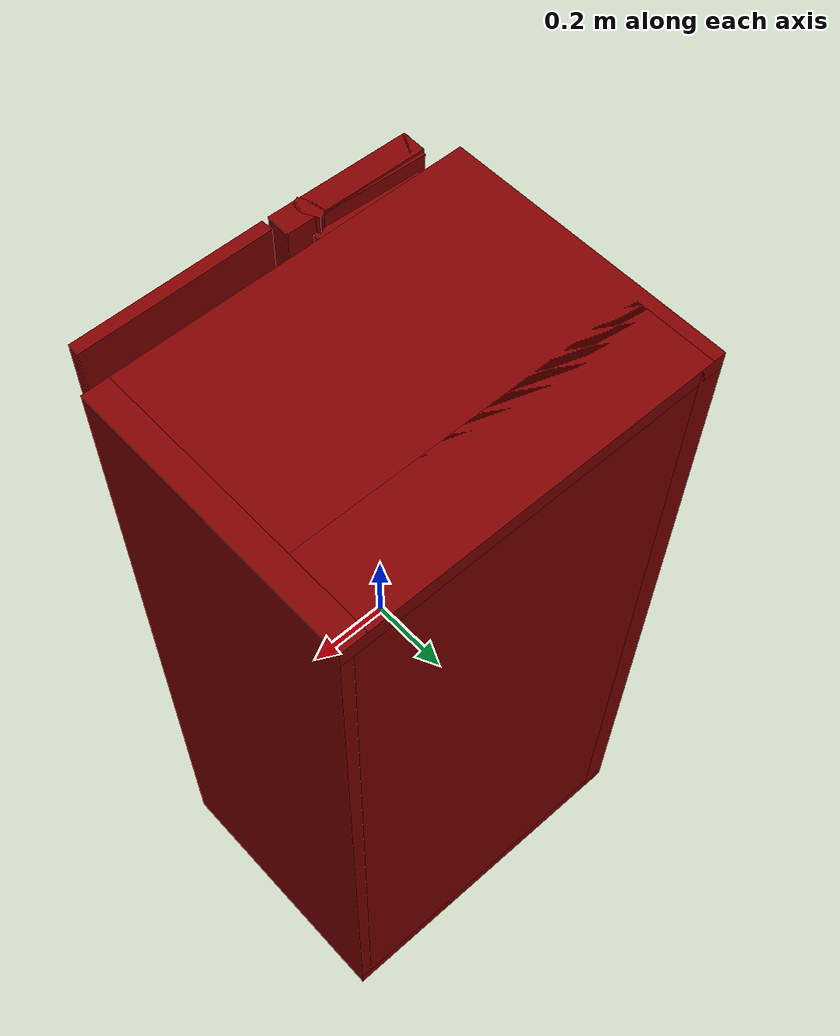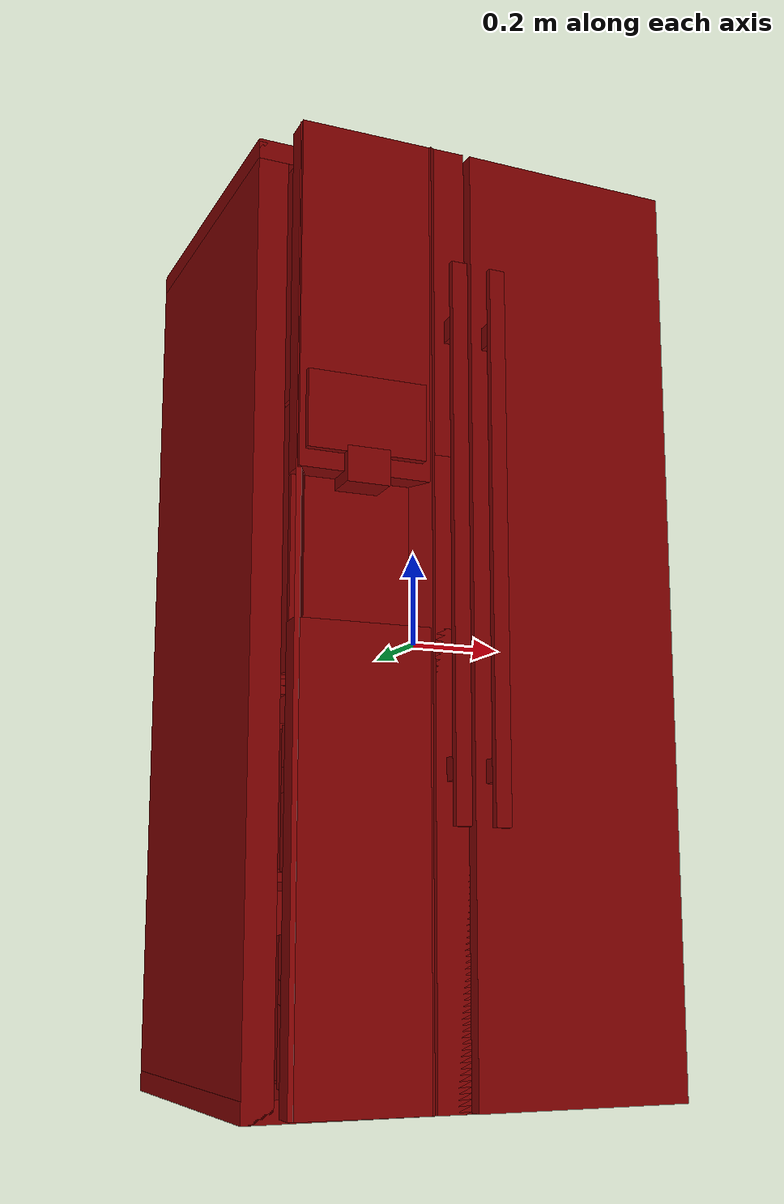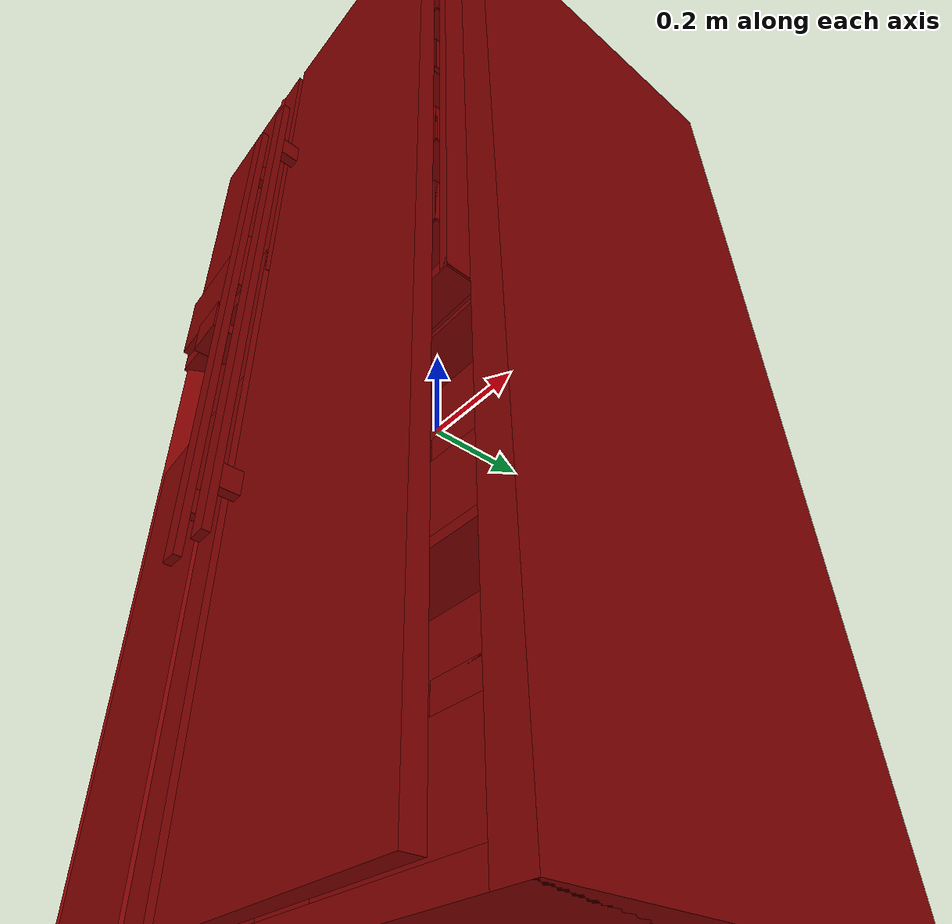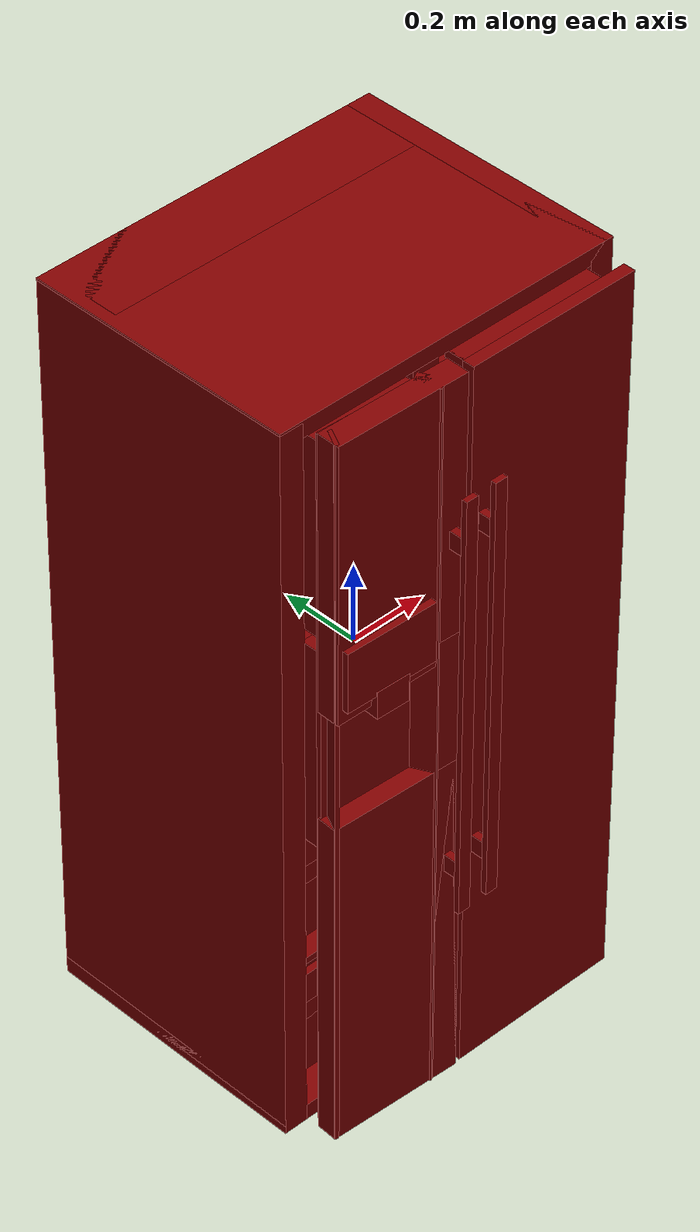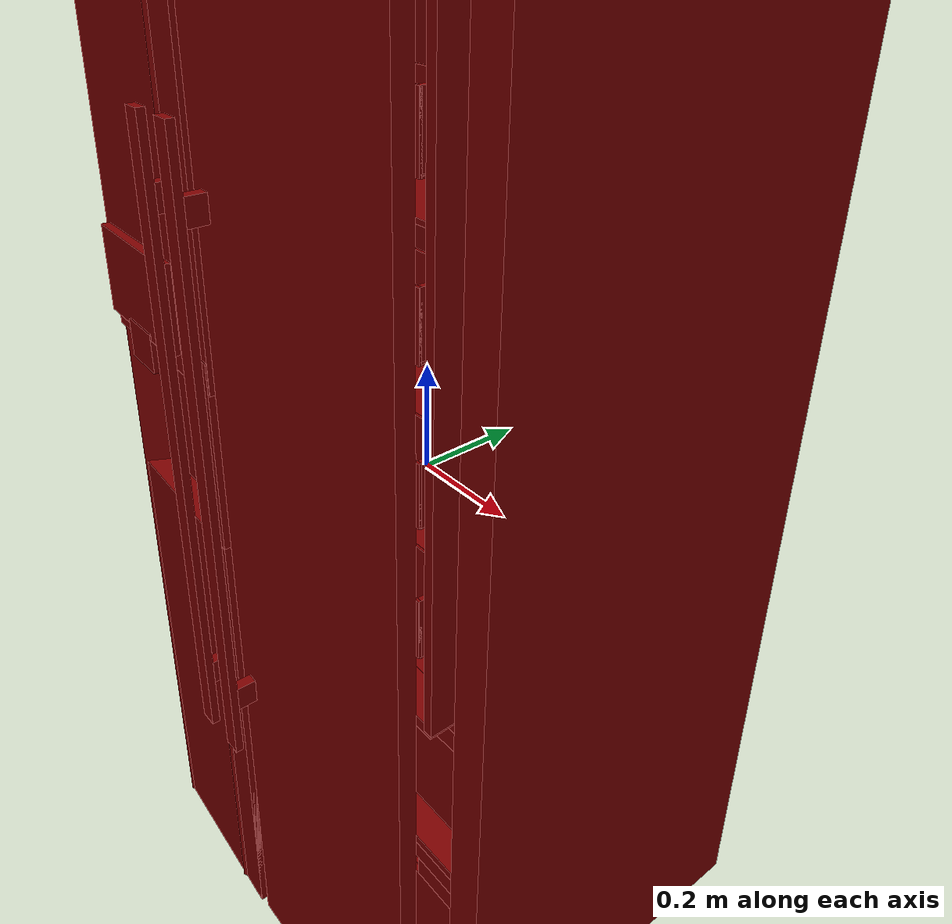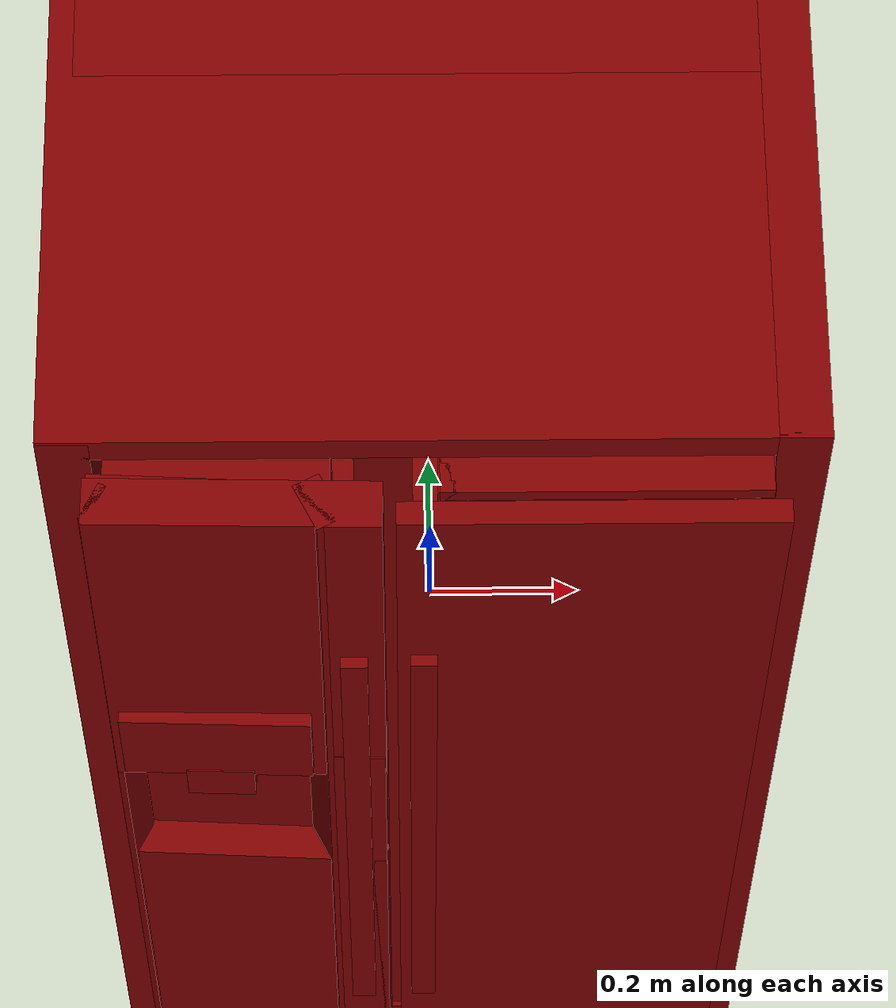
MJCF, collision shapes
<?xml version='1.0' encoding='UTF-8'?>
<mujoco model="model">
  <option timestep="0.002" gravity="0.0 0.0 -9.81"/>
  <compiler angle="radian"/>
  <asset>
    <mesh file="visuals/freezer_door.obj" name="freezer_door_vis"/>
    <mesh file="visuals/freezer_drawer0.obj" name="freezer_drawer0_vis"/>
    <mesh file="visuals/freezer_drawer1.obj" name="freezer_drawer1_vis"/>
    <mesh file="visuals/fridge_door.obj" name="fridge_door_vis"/>
    <mesh file="visuals/fridge_door_Clear.obj" name="fridge_door_Clear_vis"/>
    <mesh file="visuals/fridge_drawer0.obj" name="fridge_drawer0_vis"/>
    <mesh file="visuals/fridge_drawer1.obj" name="fridge_drawer1_vis"/>
    <mesh file="visuals/Body001.obj" name="Body001_vis"/>
    <mesh file="visuals/Body001_Clear.obj" name="Body001_Clear_vis"/>
    <texture file="visuals/T_BC001.png" name="Body001_material" type="2d"/>
    <material name="Body001_material" rgba="1 1 1 1.0" texture="Body001_material" shininess="0.141486167907715" specular="1"/>
    <texture file="visuals/T_BC001.png" name="freezer_door_material" type="2d"/>
    <material name="freezer_door_material" rgba="1 1 1 1.0" texture="freezer_door_material" shininess="0.141486167907715" specular="1"/>
    <texture file="visuals/T_BC001.png" name="freezer_drawer0_material" type="2d"/>
    <material name="freezer_drawer0_material" rgba="1 1 1 1.0" texture="freezer_drawer0_material" shininess="0.6141486167907715" specular="0.3103448502657381"/>
    <texture file="visuals/T_BC001.png" name="freezer_drawer1_material" type="2d"/>
    <material name="freezer_drawer1_material" rgba="1 1 1 1.0" texture="freezer_drawer1_material" shininess="0.6141486167907715" specular="0.3103448502657381"/>
    <texture file="visuals/T_BC001.png" name="fridge_door_material" type="2d"/>
    <material name="fridge_door_material" rgba="1 1 1 1.0" texture="fridge_door_material" shininess="0.141486167907715" specular="1"/>
    <texture file="visuals/T_BC001.png" name="fridge_door_Clear_material" type="2d"/>
    <material name="fridge_door_Clear_material" rgba="1 1 1 0.699999988079071" texture="fridge_door_Clear_material" shininess="0.141421377658844" specular="0.3103448502657381"/>
    <texture file="visuals/T_BC001.png" name="fridge_drawer0_material" type="2d"/>
    <material name="fridge_drawer0_material" rgba="1 1 1 0.699999988079071" texture="fridge_drawer0_material" shininess="0.141421377658844" specular="0.3103448502657381"/>
    <texture file="visuals/T_BC001.png" name="fridge_drawer1_material" type="2d"/>
    <material name="fridge_drawer1_material" rgba="1 1 1 0.699999988079071" texture="fridge_drawer1_material" shininess="0.141421377658844" specular="0.3103448502657381"/>
    <texture file="visuals/T_BC001.png" name="Body001_Clear_material" type="2d"/>
    <material name="Body001_Clear_material" rgba="1 1 1 0.699999988079071" texture="Body001_Clear_material" shininess="0.141421377658844" specular="0.3103448502657381"/>
  </asset>
  <default>
    <default class="visual">
      <geom conaffinity="0" contype="0" group="1" type="mesh"/>
    </default>
    <default class="collision">
      <geom group="0" rgba="0.5 0 0 0.5"/>
    </default>
    <default class="spawn">
      <geom group="0" rgba="1 1 1 0.5" contype="0" conaffinity="0"/>
      <site group="0" rgba="1 1 1 0.5"/>
    </default>
    <default class="region">
      <geom group="1" conaffinity="0" contype="0" rgba="0 1 0 0"/>
    </default>
  </default>
  <worldbody>
    <body>
      <body name="object">
        <geom mesh="Body001_vis" type="mesh" solimp="0.998 0.998 0.001" solref="0.001 1" friction="0.95 0.3 0.1" class="visual" material="Body001_material"/>
        <geom class="collision" type="box" pos="0.42698514 0.08066897 0.00000005" size="0.031174317002296448 0.3472144603729248 0.9458772540092468" quat="1.0 0.0 0.0 0.0"/>
        <geom class="collision" type="box" pos="0.00000001 0.08080845 0.92501152" size="0.45815926790237427 0.34735387563705444 0.020865734666585922" quat="1.0 0.0 0.0 0.0"/>
        <geom class="collision" type="box" pos="0.00021509 0.32882654 -0.00000006" size="0.42810675501823425 0.09933542460203171 0.9458773732185364" quat="1.0 0.0 0.0 0.0"/>
        <geom class="collision" type="box" pos="-0.05885063 -0.00889797 0.00005195" size="0.03430929034948349 0.24979962408542633 0.904093861579895" quat="1.0 0.0 0.0 0.0"/>
        <geom class="collision" type="box" pos="-0.38924086 -0.00037825 -0.16249698" size="0.014247119426727295 0.24221399426460266 0.008260749280452728" quat="1.0 0.0 0.0 0.0"/>
        <geom class="collision" type="box" pos="-0.42725158 0.08080837 -0.00283943" size="0.030907582491636276 0.34735387563705444 0.9430378675460815" quat="1.0 0.0 0.0 0.0"/>
        <geom class="collision" type="box" pos="0.00012399 -0.00500056 -0.51172590" size="0.4170524477958679 0.23744818568229675 0.008542299270629883" quat="1.0 0.0 0.0 0.0"/>
        <geom class="collision" type="box" pos="-0.10091834 -0.00037825 -0.16249698" size="0.016719326376914978 0.24221399426460266 0.008260749280452728" quat="1.0 0.0 0.0 0.0"/>
        <geom class="collision" type="box" pos="-0.01441544 -0.00037825 -0.16249698" size="0.016719326376914978 0.24221399426460266 0.008260749280452728" quat="1.0 0.0 0.0 0.0"/>
        <geom class="collision" type="box" pos="0.38873923 -0.00037825 -0.16249698" size="0.016719326376914978 0.24221399426460266 0.008260749280452728" quat="1.0 0.0 0.0 0.0"/>
        <geom class="collision" type="box" pos="0.38698617 0.02549064 0.19387200" size="0.01128388661891222 0.21634510159492493 0.008260749280452728" quat="1.0 0.0 0.0 0.0"/>
        <geom class="collision" type="box" pos="-0.01441544 0.01845139 0.19387200" size="0.016719326376914978 0.22338435053825378 0.008260749280452728" quat="1.0 0.0 0.0 0.0"/>
        <geom class="collision" type="box" pos="-0.10091834 0.01845139 0.19387200" size="0.016719326376914978 0.22338435053825378 0.008260749280452728" quat="1.0 0.0 0.0 0.0"/>
        <geom class="collision" type="box" pos="-0.38924086 0.01845139 0.19387200" size="0.014247119426727295 0.22338435053825378 0.008260749280452728" quat="1.0 0.0 0.0 0.0"/>
        <geom class="collision" type="box" pos="-0.38924086 0.01506027 0.54034185" size="0.014247119426727295 0.22677546739578247 0.008260749280452728" quat="1.0 0.0 0.0 0.0"/>
        <geom class="collision" type="box" pos="-0.10091834 0.01506022 0.54034185" size="0.016719326376914978 0.22677552700042725 0.008260749280452728" quat="1.0 0.0 0.0 0.0"/>
        <geom class="collision" type="box" pos="-0.01441544 0.01506025 0.54034185" size="0.016719326376914978 0.22677549719810486 0.008260749280452728" quat="1.0 0.0 0.0 0.0"/>
        <geom class="collision" type="box" pos="0.38557416 0.01506019 0.54034185" size="0.010424098931252956 0.22677555680274963 0.008260749280452728" quat="1.0 0.0 0.0 0.0"/>
        <geom class="collision" type="box" pos="0.00000001 0.08080845 -0.92495960" size="0.45815926790237427 0.34735387563705444 0.020917614921927452" quat="1.0 0.0 0.0 0.0"/>
        <geom class="collision" type="box" pos="-0.21467027 -0.00734162 -0.14780229" size="0.19012895226478577 0.2397892326116562 0.006109719164669514" quat="1.0 0.0 0.0 0.0"/>
        <geom class="collision" type="box" pos="-0.21467030 0.01845565 0.20975785" size="0.19012895226478577 0.21399196982383728 0.006064644083380699" quat="1.0 0.0 0.0 0.0"/>
        <geom class="collision" type="box" pos="-0.21517804 0.01845564 0.55493498" size="0.1883099377155304 0.21399198472499847 0.005926718935370445" quat="1.0 0.0 0.0 0.0"/>
        <geom class="collision" type="box" pos="0.16200835 -0.00734162 -0.14759985" size="0.255168080329895 0.2397892326116562 0.004432696849107742" quat="1.0 0.0 0.0 0.0"/>
        <geom class="collision" type="box" pos="0.16200833 0.01845565 0.20889238" size="0.255168080329895 0.21399196982383728 0.00443270243704319" quat="1.0 0.0 0.0 0.0"/>
        <geom class="collision" type="box" pos="0.16150059 0.01845564 0.55527371" size="0.25334906578063965 0.21399198472499847 0.004432702902704477" quat="1.0 0.0 0.0 0.0"/>
        <body name="freezer_door">
          <joint axis="0.0 0.0 -1.0" pos="-0.41386953 -0.35010860 0.00172258" limited="true" name="freezer_door_joint" range="0.0 1.5707963267948966" type="hinge" damping="1" frictionloss="1" armature=".01" stiffness="0.05"/>
          <geom mesh="freezer_door_vis" type="mesh" solimp="0.998 0.998 0.001" solref="0.001 1" friction="0.95 0.3 0.1" class="visual" material="freezer_door_material"/>
          <geom class="collision" type="box" pos="-0.37522584 -0.22543121 -0.04279220" size="0.005302963778376579 0.03438347578048706 0.045121245086193085" quat="1.0 0.0 0.0 0.0"/>
          <geom class="collision" type="box" pos="-0.26483190 -0.19807667 -0.04080178" size="0.10756411403417587 0.002234865678474307 0.03930643945932388" quat="1.0 0.0 0.0 0.0"/>
          <geom class="collision" type="box" pos="-0.15266697 -0.22482333 -0.04247972" size="0.006141011603176594 0.03377559408545494 0.045045383274555206" quat="1.0 0.0 0.0 0.0"/>
          <geom class="collision" type="box" pos="-0.25909418 -0.22559907 -0.08286168" size="0.1115652471780777 0.033953163772821426 0.004646170884370804" quat="1.0 0.0 0.0 0.0"/>
          <geom class="collision" type="box" pos="-0.23082300 -0.34350312 0.59181035" size="0.17186114192008972 0.029590152204036713 0.3520924150943756" quat="0.9999542236328125 0.0 -0.0 -0.00956775899976492"/>
          <geom class="collision" type="box" pos="-0.38943523 -0.34112275 0.00611198" size="0.005014027468860149 0.024861134588718414 0.9377908110618591" quat="0.972369909286499 0.0 -0.0 -0.2334454208612442"/>
          <geom class="collision" type="box" pos="-0.26915872 -0.35612572 0.25117961" size="0.04307648912072182 0.03443373367190361 0.03533017635345459" quat="0.9998664259910583 0.0 -0.0 -0.016344254836440086"/>
          <geom class="collision" type="box" pos="-0.27079976 -0.35453693 0.35156155" size="0.11950033903121948 0.033889371901750565 0.07683902978897095" quat="0.9998664259910583 0.0 -0.0 -0.016344254836440086"/>
          <geom class="collision" type="box" pos="-0.25136417 -0.27029238 0.65660053" size="0.13150446116924286 0.050830140709877014 0.24646736681461334" quat="1.0 0.0 0.0 0.0"/>
          <geom class="collision" type="box" pos="-0.25637665 -0.28425828 0.12595451" size="0.1384330540895462 0.026513097807765007 0.2620489001274109" quat="1.0 0.0 0.0 0.0"/>
          <geom class="collision" type="box" pos="-0.09543417 -0.34735370 -0.31798622" size="0.0363582968711853 0.029590152204036713 0.6141636371612549" quat="0.9996857047080994 0.0 -0.0 -0.02506900392472744"/>
          <geom class="collision" type="box" pos="-0.13271867 -0.34318704 0.00611198" size="0.017285535112023354 0.031519815325737 0.9377908110618591" quat="0.972369909286499 0.0 0.0 0.23344537615776062"/>
          <geom class="collision" type="box" pos="-0.23089856 -0.34318919 -0.48917717" size="0.17186114192008972 0.02695966698229313 0.44297271966934204" quat="0.9996857047080994 0.0 -0.0 -0.02506900392472744"/>
          <geom class="collision" type="box" pos="-0.09533772 -0.39624262 0.55151278" size="0.009819971397519112 0.019211111590266228 0.022575894370675087" quat="1.0 0.0 0.0 0.0" name="freezer_door_handle_1"/>
          <geom class="collision" type="box" pos="-0.09533772 -0.39624262 -0.31407154" size="0.009819971397519112 0.019211111590266228 0.022575894370675087" quat="1.0 0.0 0.0 0.0" name="freezer_door_handle_2"/>
          <geom class="collision" type="box" pos="-0.09540906 -0.42169658 0.12845853" size="0.016213277354836464 0.007124675903469324 0.5508098006248474" quat="1.0 0.0 0.0 0.0" name="freezer_door_handle_main"/>
          <geom class="collision" type="box" pos="-0.23032171 -0.31723160 0.01248714" size="0.16839608550071716 0.006266779266297817 0.9257198572158813" quat="0.9996857047080994 0.0 -0.0 -0.02506900392472744" name="freezer_door_main"/>
        </body>
        <body name="freezer_drawer0">
          <geom class="region" name="reg_freezer_drawer0" type="box" pos="-0.232679895 -0.01181981 -0.747288285" size="0.10780959500000001 0.15619381 0.127817525"/>
          <joint axis="0.0 -1.0 0.0" pos="-0.23265472 -0.01705072 -0.75517172" limited="true" name="freezer_drawer0_joint" range="0.0 0.38" type="slide" damping="1" frictionloss="1" armature=".01" stiffness="0.05"/>
          <geom mesh="freezer_drawer0_vis" type="mesh" solimp="0.998 0.998 0.001" solref="0.001 1" friction="0.95 0.3 0.1" class="visual" material="freezer_drawer0_material"/>
          <geom class="collision" type="box" pos="-0.23235098 -0.00592006 -0.88401026" size="0.1212400272488594 0.16665911674499512 0.0026573622599244118" quat="1.0 0.0 0.0 0.0"/>
          <geom class="collision" type="box" pos="-0.11750753 -0.00760160 -0.74947304" size="0.0025875847786664963 0.16834062337875366 0.13188670575618744" quat="1.0 0.0 0.0 0.0"/>
          <geom class="collision" type="box" pos="-0.34949386 -0.00592004 -0.74947298" size="0.004083841573446989 0.16665898263454437 0.13188646733760834" quat="1.0 0.0 0.0 0.0"/>
          <geom class="collision" type="box" pos="-0.23235092 0.15800629 -0.75032580" size="0.1212395504117012 0.0027260123752057552 0.13103343546390533" quat="1.0 0.0 0.0 0.0"/>
          <geom class="collision" type="box" pos="-0.23265472 -0.18613959 -0.65703362" size="0.12792569398880005 0.008694227784872055 0.04190560802817345" quat="1.0 0.0 0.0 0.0"/>
          <geom class="collision" type="box" pos="-0.23265472 -0.18613959 -0.81837386" size="0.12792569398880005 0.008694223128259182 0.07567212730646133" quat="1.0 0.0 0.0 0.0"/>
          <geom class="collision" type="box" pos="-0.14710841 -0.18613959 -0.72074133" size="0.04237939417362213 0.008694218471646309 0.02444271557033062" quat="1.0 0.0 0.0 0.0"/>
          <geom class="collision" type="box" pos="-0.31693524 -0.18613959 -0.72074133" size="0.043645162135362625 0.008694213815033436 0.024442696943879128" quat="1.0 0.0 0.0 0.0"/>
        </body>
        <body name="freezer_drawer1">
          <geom class="region" name="reg_freezer_drawer1" type="box" pos="-0.23272381 -0.009725644999999991 -0.35270696" size="0.10836145999999999 0.156539565 0.12864249"/>
          <joint axis="0.0 -1.0 0.0" pos="-0.23265471 -0.01705071 -0.35980609" limited="true" name="freezer_drawer1_joint" range="0.0 0.38" type="slide" damping="1" frictionloss="1" armature=".01" stiffness="0.05"/>
          <geom mesh="freezer_drawer1_vis" type="mesh" solimp="0.998 0.998 0.001" solref="0.001 1" friction="0.95 0.3 0.1" class="visual" material="freezer_drawer1_material"/>
          <geom class="collision" type="box" pos="-0.22984093 0.15972414 -0.35759538" size="0.11616400629281998 0.0027535995468497276 0.13470062613487244" quat="1.0 0.0 0.0 0.0"/>
          <geom class="collision" type="box" pos="-0.34888843 -0.00413724 -0.35759538" size="0.002895521931350231 0.16662105917930603 0.13470056653022766" quat="1.0 0.0 0.0 0.0"/>
          <geom class="collision" type="box" pos="-0.11633713 -0.00425482 -0.35759532" size="0.0026138965040445328 0.1665034294128418 0.1347004622220993" quat="1.0 0.0 0.0 0.0"/>
          <geom class="collision" type="box" pos="-0.22984093 -0.00413735 -0.48960572" size="0.11616405099630356 0.16662085056304932 0.002684305189177394" quat="1.0 0.0 0.0 0.0"/>
          <geom class="collision" type="box" pos="-0.23265472 -0.18701235 -0.26209244" size="0.12792569398880005 0.009566946886479855 0.04190546274185181" quat="1.0 0.0 0.0 0.0"/>
          <geom class="collision" type="box" pos="-0.23265472 -0.18701238 -0.42343268" size="0.12792569398880005 0.009566977620124817 0.07567182928323746" quat="1.0 0.0 0.0 0.0"/>
          <geom class="collision" type="box" pos="-0.14710841 -0.18701238 -0.32580015" size="0.04237939417362213 0.009566972963511944 0.02444256842136383" quat="1.0 0.0 0.0 0.0"/>
          <geom class="collision" type="box" pos="-0.31693524 -0.18701238 -0.32580015" size="0.043645162135362625 0.00956697203218937 0.024442549794912338" quat="1.0 0.0 0.0 0.0"/>
        </body>
        <body name="fridge_door">
          <joint axis="0.0 0.0 1.0" pos="0.41376165 -0.34795133 0.00211309" limited="true" name="fridge_door_joint" range="0.0 1.5707963267948966" type="hinge" damping="1" frictionloss="1" armature=".01" stiffness="0.05"/>
          <geom mesh="fridge_door_vis" type="mesh" solimp="0.998 0.998 0.001" solref="0.001 1" friction="0.95 0.3 0.1" class="visual" material="fridge_door_material"/>
          <geom class="collision" type="box" pos="0.36393893 -0.27103997 0.25901425" size="0.004108804743736982 0.03693544864654541 0.04862546920776367" quat="1.0 0.0 0.0 0.0"/>
          <geom class="collision" type="box" pos="0.04552877 -0.27103997 0.25901425" size="0.00410880520939827 0.03693544864654541 0.04862546920776367" quat="1.0 0.0 0.0 0.0"/>
          <geom class="collision" type="box" pos="0.20467269 -0.23466266 0.25901425" size="0.16337506473064423 0.0021437890827655792 0.04862546920776367" quat="1.0 0.0 0.0 0.0"/>
          <geom class="collision" type="box" pos="0.20467269 -0.27008093 0.21138166" size="0.16337506473064423 0.03606615960597992 0.00257178395986557" quat="1.0 0.0 0.0 0.0"/>
          <geom class="collision" type="box" pos="0.20467269 -0.30705244 0.25901428" size="0.16337506473064423 0.002143790014088154 0.04862546920776367" quat="1.0 0.0 0.0 0.0"/>
          <geom class="collision" type="box" pos="0.20467269 -0.30705244 0.04429203" size="0.16337506473064423 0.002143790014088154 0.048766158521175385" quat="1.0 0.0 0.0 0.0"/>
          <geom class="collision" type="box" pos="0.20467269 -0.27036232 -0.00383185" size="0.16337506473064423 0.03578478842973709 0.00257178395986557" quat="1.0 0.0 0.0 0.0"/>
          <geom class="collision" type="box" pos="0.20467269 -0.23522539 0.04429202" size="0.16337506473064423 0.0021437890827655792 0.048766158521175385" quat="1.0 0.0 0.0 0.0"/>
          <geom class="collision" type="box" pos="0.04552877 -0.27132130 0.04429202" size="0.00410880520939827 0.03665407747030258 0.048766158521175385" quat="1.0 0.0 0.0 0.0"/>
          <geom class="collision" type="box" pos="0.36393893 -0.27132130 0.04429202" size="0.004108804743736982 0.03665407747030258 0.048766158521175385" quat="1.0 0.0 0.0 0.0"/>
          <geom class="collision" type="box" pos="0.04552877 -0.27067304 0.49079651" size="0.00410880520939827 0.037302352488040924 0.049426592886447906" quat="1.0 0.0 0.0 0.0"/>
          <geom class="collision" type="box" pos="0.20620792 -0.23392884 0.49079651" size="0.15882854163646698 0.0021437890827655792 0.049426592886447906" quat="1.0 0.0 0.0 0.0"/>
          <geom class="collision" type="box" pos="0.20467269 -0.26971406 0.44394171" size="0.16337506473064423 0.03643306344747543 0.00257178395986557" quat="1.0 0.0 0.0 0.0"/>
          <geom class="collision" type="box" pos="0.20467269 -0.30705244 0.49079651" size="0.16337506473064423 0.002143790014088154 0.049426592886447906" quat="1.0 0.0 0.0 0.0"/>
          <geom class="collision" type="box" pos="0.20467269 -0.26927984 0.66656345" size="0.16337506473064423 0.036867283284664154 0.00257178395986557" quat="1.0 0.0 0.0 0.0"/>
          <geom class="collision" type="box" pos="0.20467269 -0.23306040 0.71322936" size="0.16337506473064423 0.0021437890827655792 0.04884042590856552" quat="1.0 0.0 0.0 0.0"/>
          <geom class="collision" type="box" pos="0.04552877 -0.27023882 0.71322936" size="0.00410880520939827 0.037736572325229645 0.04884042590856552" quat="1.0 0.0 0.0 0.0"/>
          <geom class="collision" type="box" pos="0.36393893 -0.27023882 0.71322936" size="0.004108804743736982 0.037736572325229645 0.04884042590856552" quat="1.0 0.0 0.0 0.0"/>
          <geom class="collision" type="box" pos="0.36393893 -0.27067304 0.49079651" size="0.004108804743736982 0.037302352488040924 0.049426592886447906" quat="1.0 0.0 0.0 0.0"/>
          <geom class="collision" type="box" pos="0.20467269 -0.30705244 0.71322936" size="0.16337506473064423 0.002143790014088154 0.04884042590856552" quat="1.0 0.0 0.0 0.0"/>
          <geom class="collision" type="box" pos="0.19871688 -0.27813245 0.88513750" size="0.1943289339542389 0.029394090175628662 0.010065913200378418" quat="1.0 0.0 0.0 0.0"/>
          <geom class="collision" type="box" pos="0.38557315 -0.27813245 0.38135272" size="0.00825885683298111 0.029394090175628662 0.5138506889343262" quat="1.0 0.0 0.0 0.0"/>
          <geom class="collision" type="box" pos="0.01671923 -0.27813245 0.38135272" size="0.010247983038425446 0.029394090175628662 0.5138506889343262" quat="1.0 0.0 0.0 0.0"/>
          <geom class="collision" type="box" pos="0.19871688 -0.27813245 -0.12632507" size="0.1943289339542389 0.029394090175628662 0.010065913200378418" quat="1.0 0.0 0.0 0.0"/>
          <geom class="collision" type="box" pos="-0.01220005 -0.39408535 0.55151278" size="0.009819971397519112 0.019211111590266228 0.022575894370675087" quat="1.0 0.0 0.0 0.0" name="fridge_door_handle_1"/>
          <geom class="collision" type="box" pos="-0.01220005 -0.39408535 -0.31407154" size="0.009819971397519112 0.019211111590266228 0.022575894370675087" quat="1.0 0.0 0.0 0.0" name="fridge_door_handle_2"/>
          <geom class="collision" type="box" pos="-0.01227140 -0.41953931 0.12845853" size="0.016213277354836464 0.007124675903469324 0.5508098006248474" quat="1.0 0.0 0.0 0.0" name="fridge_door_handle_main"/>
          <geom class="collision" type="box" pos="0.18149900 -0.35948218 0.00623475" size="0.2255043089389801 0.014911549165844917 0.9396424889564514" quat="1.0 0.0 0.0 0.0" name="fridge_door_main"/>
          <body name="fridge_door_Clear">
            <geom mesh="fridge_door_Clear_vis" type="mesh" solimp="0.998 0.998 0.001" solref="0.001 1" friction="0.95 0.3 0.1" class="visual" material="fridge_door_Clear_material"/>
            <geom class="collision" type="box" pos="0.36393893 -0.27103997 0.25901425" size="0.004108804743736982 0.03693544864654541 0.04862546920776367" quat="1.0 0.0 0.0 0.0"/>
            <geom class="collision" type="box" pos="0.04552877 -0.27103997 0.25901425" size="0.00410880520939827 0.03693544864654541 0.04862546920776367" quat="1.0 0.0 0.0 0.0"/>
            <geom class="collision" type="box" pos="0.20467269 -0.23466266 0.25901425" size="0.16337506473064423 0.0021437890827655792 0.04862546920776367" quat="1.0 0.0 0.0 0.0"/>
            <geom class="collision" type="box" pos="0.20467269 -0.27008093 0.21138166" size="0.16337506473064423 0.03606615960597992 0.00257178395986557" quat="1.0 0.0 0.0 0.0"/>
            <geom class="collision" type="box" pos="0.20467269 -0.30705244 0.25901428" size="0.16337506473064423 0.002143790014088154 0.04862546920776367" quat="1.0 0.0 0.0 0.0"/>
            <geom class="collision" type="box" pos="0.20467269 -0.30705244 0.04429203" size="0.16337506473064423 0.002143790014088154 0.048766158521175385" quat="1.0 0.0 0.0 0.0"/>
            <geom class="collision" type="box" pos="0.20467269 -0.27036232 -0.00383185" size="0.16337506473064423 0.03578478842973709 0.00257178395986557" quat="1.0 0.0 0.0 0.0"/>
            <geom class="collision" type="box" pos="0.20467269 -0.23522539 0.04429202" size="0.16337506473064423 0.0021437890827655792 0.048766158521175385" quat="1.0 0.0 0.0 0.0"/>
            <geom class="collision" type="box" pos="0.04552877 -0.27132130 0.04429202" size="0.00410880520939827 0.03665407747030258 0.048766158521175385" quat="1.0 0.0 0.0 0.0"/>
            <geom class="collision" type="box" pos="0.36393893 -0.27132130 0.04429202" size="0.004108804743736982 0.03665407747030258 0.048766158521175385" quat="1.0 0.0 0.0 0.0"/>
            <geom class="collision" type="box" pos="0.04552877 -0.27067304 0.49079651" size="0.00410880520939827 0.037302352488040924 0.049426592886447906" quat="1.0 0.0 0.0 0.0"/>
            <geom class="collision" type="box" pos="0.20620792 -0.23392884 0.49079651" size="0.15882854163646698 0.0021437890827655792 0.049426592886447906" quat="1.0 0.0 0.0 0.0"/>
            <geom class="collision" type="box" pos="0.20467269 -0.26971406 0.44394171" size="0.16337506473064423 0.03643306344747543 0.00257178395986557" quat="1.0 0.0 0.0 0.0"/>
            <geom class="collision" type="box" pos="0.20467269 -0.30705244 0.49079651" size="0.16337506473064423 0.002143790014088154 0.049426592886447906" quat="1.0 0.0 0.0 0.0"/>
            <geom class="collision" type="box" pos="0.20467269 -0.26927984 0.66656345" size="0.16337506473064423 0.036867283284664154 0.00257178395986557" quat="1.0 0.0 0.0 0.0"/>
            <geom class="collision" type="box" pos="0.20467269 -0.23306040 0.71322936" size="0.16337506473064423 0.0021437890827655792 0.04884042590856552" quat="1.0 0.0 0.0 0.0"/>
            <geom class="collision" type="box" pos="0.04552877 -0.27023882 0.71322936" size="0.00410880520939827 0.037736572325229645 0.04884042590856552" quat="1.0 0.0 0.0 0.0"/>
            <geom class="collision" type="box" pos="0.36393893 -0.27023882 0.71322936" size="0.004108804743736982 0.037736572325229645 0.04884042590856552" quat="1.0 0.0 0.0 0.0"/>
            <geom class="collision" type="box" pos="0.36393893 -0.27067304 0.49079651" size="0.004108804743736982 0.037302352488040924 0.049426592886447906" quat="1.0 0.0 0.0 0.0"/>
            <geom class="collision" type="box" pos="0.20467269 -0.30705244 0.71322936" size="0.16337506473064423 0.002143790014088154 0.04884042590856552" quat="1.0 0.0 0.0 0.0"/>
          </body>
        </body>
        <body name="fridge_drawer0">
          <geom class="region" name="reg_fridge_drawer0" type="box" pos="0.173165275 -0.007758550000000003 -0.73012343" size="0.16498908499999998 0.16407768 0.14811704999999997"/>
          <joint axis="0.0 -1.0 0.0" pos="0.17305024 -0.01006073 -0.73673165" limited="true" name="fridge_drawer0_joint" range="0.0 0.38" type="slide" damping="1" frictionloss="1" armature=".01" stiffness="0.05"/>
          <geom mesh="fridge_drawer0_vis" type="mesh" solimp="0.998 0.998 0.001" solref="0.001 1" friction="0.95 0.3 0.1" class="visual" material="fridge_drawer0_material"/>
          <geom class="collision" type="box" pos="0.17305024 -0.18585273 -0.62097239" size="0.18761920928955078 0.005388692021369934 0.04415958374738693" quat="1.0 0.0 0.0 0.0"/>
          <geom class="collision" type="box" pos="0.17010270 0.17243024 -0.73432636" size="0.17976348102092743 0.0028909482061862946 0.1528046578168869" quat="1.0 0.0 0.0 0.0"/>
          <geom class="collision" type="box" pos="-0.00051176 -0.00578065 -0.73432636" size="0.002890831558033824 0.17439395189285278 0.15280412137508392" quat="1.0 0.0 0.0 0.0"/>
          <geom class="collision" type="box" pos="0.34639353 -0.00578065 -0.73432636" size="0.002890823408961296 0.17439338564872742 0.15280362963676453" quat="1.0 0.0 0.0 0.0"/>
          <geom class="collision" type="box" pos="0.17010269 -0.00578065 -0.88517845" size="0.1797623336315155 0.17439281940460205 0.002818058244884014" quat="1.0 0.0 0.0 0.0"/>
          <geom class="collision" type="box" pos="0.17305024 -0.18585273 -0.79820126" size="0.18761920928955078 0.005388680845499039 0.09185288846492767" quat="1.0 0.0 0.0 0.0"/>
          <geom class="collision" type="box" pos="0.28982618 -0.18585273 -0.68601984" size="0.07084327191114426 0.005388678517192602 0.026378987357020378" quat="1.0 0.0 0.0 0.0"/>
          <geom class="collision" type="box" pos="0.05474281 -0.18585273 -0.68601984" size="0.06931177526712418 0.005388676188886166 0.026378970593214035" quat="1.0 0.0 0.0 0.0"/>
        </body>
        <body name="fridge_drawer1">
          <geom class="region" name="reg_fridge_drawer1" type="box" pos="0.173165275 -0.007758550000000003 -0.336336745" size="0.16498908499999998 0.16407768 0.14583268500000002"/>
          <joint axis="0.0 -1.0 0.0" pos="0.17305025 -0.01006071 -0.34244418" limited="true" name="fridge_drawer1_joint" range="0.0 0.38" type="slide" damping="1" frictionloss="1" armature=".01" stiffness="0.05"/>
          <geom mesh="fridge_drawer1_vis" type="mesh" solimp="0.998 0.998 0.001" solref="0.001 1" friction="0.95 0.3 0.1" class="visual" material="fridge_drawer1_material"/>
          <geom class="collision" type="box" pos="0.17261046 0.00047634 -0.48904181" size="0.17567558586597443 0.18519148230552673 0.0027973607648164034" quat="1.0 0.0 0.0 0.0"/>
          <geom class="collision" type="box" pos="0.34541163 0.00458516 -0.33916187" size="0.002874444704502821 0.18108250200748444 0.15289714932441711" quat="1.0 0.0 0.0 0.0"/>
          <geom class="collision" type="box" pos="0.00014037 0.00038666 -0.33916187" size="0.003205449553206563 0.18528084456920624 0.1528969407081604" quat="1.0 0.0 0.0 0.0"/>
          <geom class="collision" type="box" pos="0.17261049 0.17709264 -0.33969507" size="0.17567558586597443 0.008558593690395355 0.15342991054058075" quat="1.0 0.0 0.0 0.0"/>
          <geom class="collision" type="box" pos="0.17305024 -0.18585273 -0.22932392" size="0.18761920928955078 0.00538866501301527 0.04415936395525932" quat="1.0 0.0 0.0 0.0"/>
          <geom class="collision" type="box" pos="0.17305024 -0.18585273 -0.40655282" size="0.18761920928955078 0.005388662684708834 0.09185229986906052" quat="1.0 0.0 0.0 0.0"/>
          <geom class="collision" type="box" pos="0.28982618 -0.18585273 -0.29437137" size="0.07084327191114426 0.005388660356402397 0.026378842070698738" quat="1.0 0.0 0.0 0.0"/>
          <geom class="collision" type="box" pos="0.05474281 -0.18585273 -0.29437137" size="0.06931177526712418 0.005388658028095961 0.026378823444247246" quat="1.0 0.0 0.0 0.0"/>
        </body>
        <body name="Body001_Clear">
          <geom mesh="Body001_Clear_vis" type="mesh" solimp="0.998 0.998 0.001" solref="0.001 1" friction="0.95 0.3 0.1" class="visual" material="Body001_Clear_material"/>
          <geom class="collision" type="box" pos="0.16200835 -0.00734162 -0.14759985" size="0.255168080329895 0.2397892326116562 0.004432696849107742" quat="1.0 0.0 0.0 0.0"/>
          <geom class="collision" type="box" pos="0.16200833 0.01845565 0.20889238" size="0.255168080329895 0.21399196982383728 0.00443270243704319" quat="1.0 0.0 0.0 0.0"/>
          <geom class="collision" type="box" pos="0.16150059 0.01845564 0.55527371" size="0.25334906578063965 0.21399198472499847 0.004432702902704477" quat="1.0 0.0 0.0 0.0"/>
        </body>
        <geom class="region" name="reg_freezer_shelf0" type="box" pos="-0.246994055 0.018866414999999997 0.021647145000000007" size="0.14394510500000002 0.197599425 0.158341175"/>
        <geom class="region" name="reg_freezer_shelf1" type="box" pos="-0.24435455499999997 0.012987645000000006 0.37397367000000004" size="0.146929205 0.20200035500000002 0.15368761"/>
        <geom class="region" name="reg_freezer_shelf2" type="box" pos="-0.244713665 0.013184185000000001 0.72879088" size="0.146780805 0.202936275 0.16299230999999997"/>
        <geom class="region" name="reg_fridge_shelf0" type="box" pos="0.18540500000000001 -0.0025340449999999987 0.02150734" size="0.2040762 0.21907091499999998 0.15867269"/>
        <geom class="region" name="reg_fridge_shelf1" type="box" pos="0.18553519 0.013670155000000003 0.37378616000000003" size="0.20447026 0.20243873499999998 0.15378553"/>
        <geom class="region" name="reg_fridge_shelf2" type="box" pos="0.183795915 0.013222905000000007 0.7285268" size="0.202836545 0.202959845 0.16338483999999998"/>
        <geom class="region" name="reg_main" type="box" pos="0.0 0.017694635000000014 -5.4999999998806004e-08" size="0.45915924 0.411467625 0.946877255"/>
      </body>
    </body>
  </worldbody>
  <actuator>
    <motor name="freezer_door_joint_actuator" joint="freezer_door_joint" gear="50"/>
    <motor name="freezer_drawer0_joint_actuator" joint="freezer_drawer0_joint" gear="50"/>
    <motor name="freezer_drawer1_joint_actuator" joint="freezer_drawer1_joint" gear="50"/>
    <motor name="fridge_door_joint_actuator" joint="fridge_door_joint" gear="50"/>
    <motor name="fridge_drawer0_joint_actuator" joint="fridge_drawer0_joint" gear="50"/>
    <motor name="fridge_drawer1_joint_actuator" joint="fridge_drawer1_joint" gear="50"/>
  </actuator>
</mujoco>
